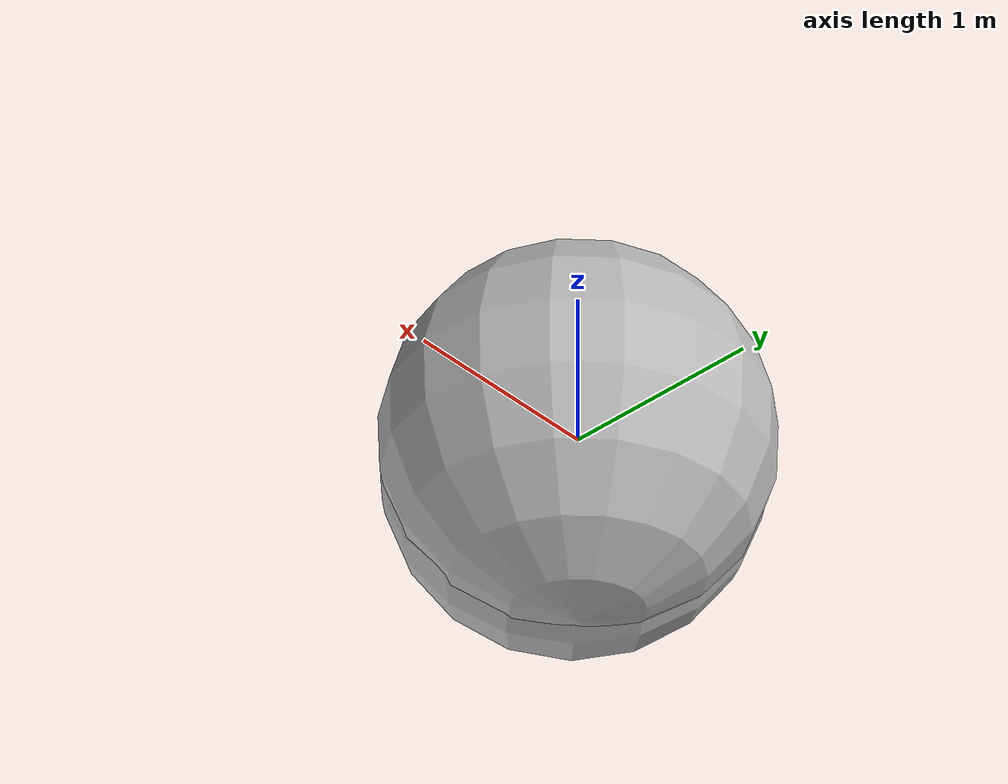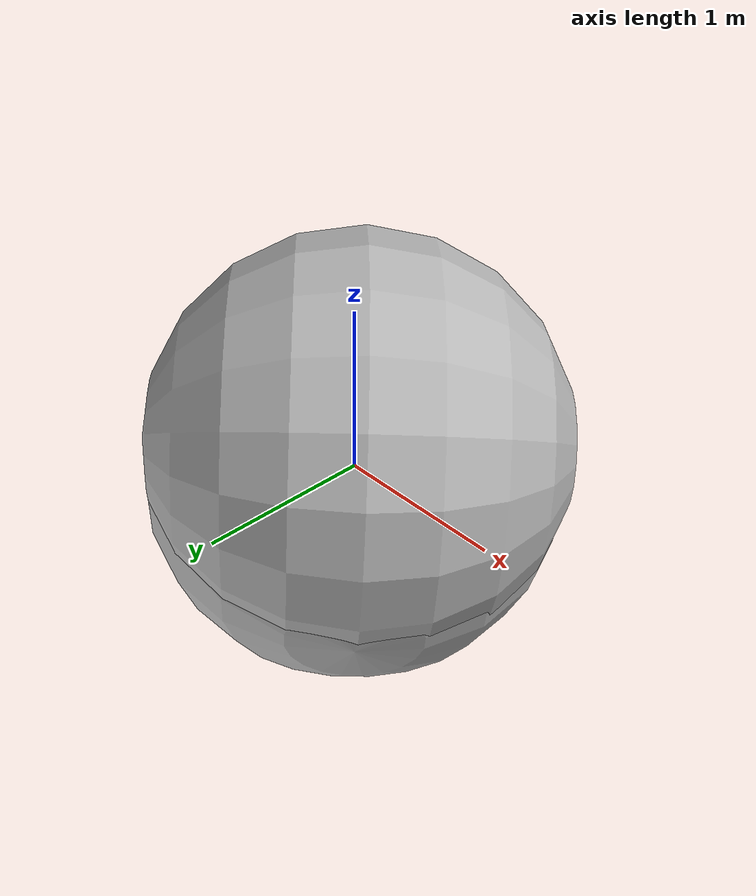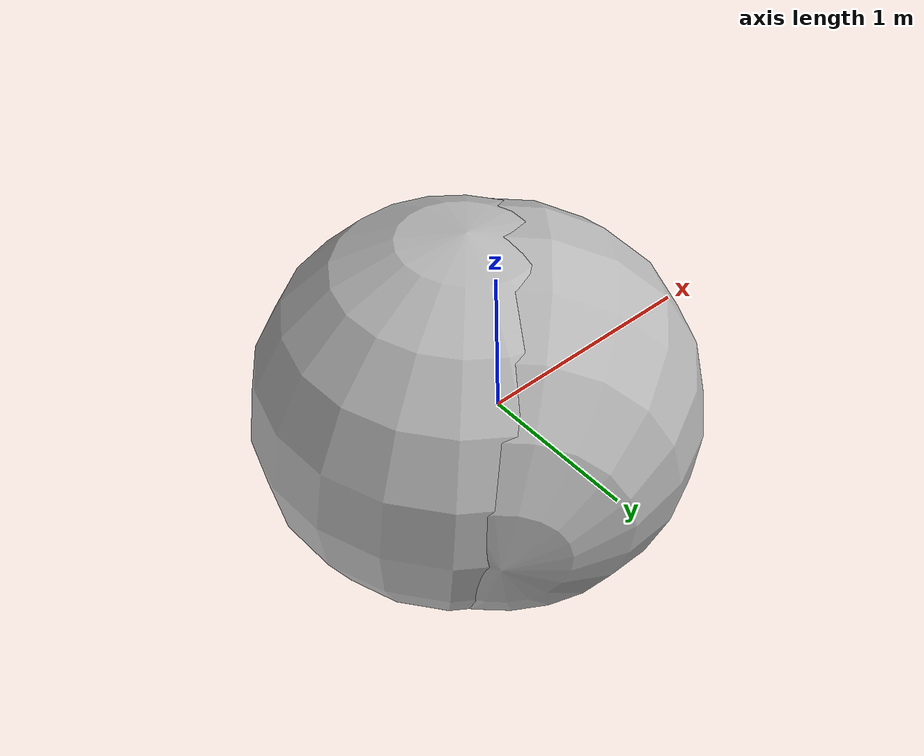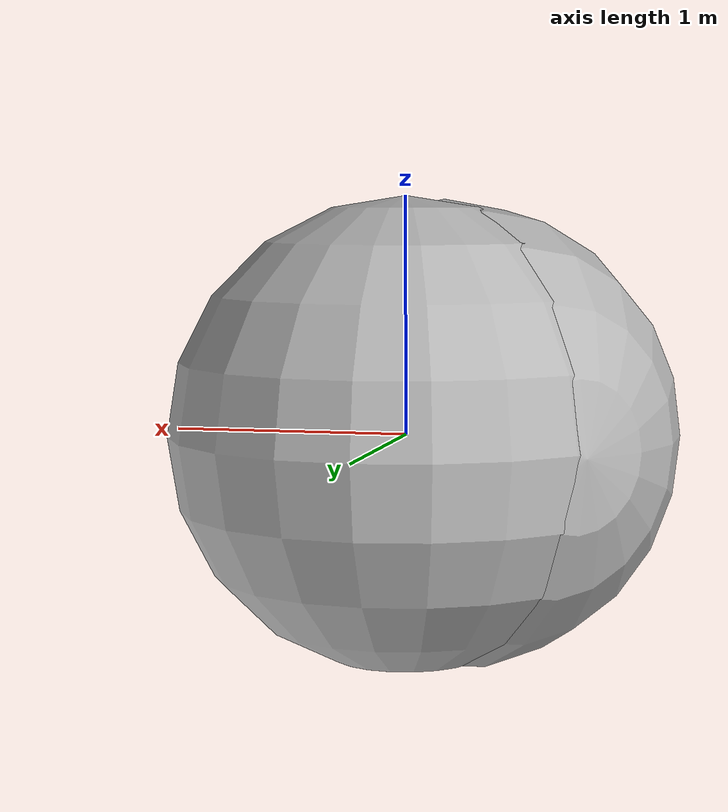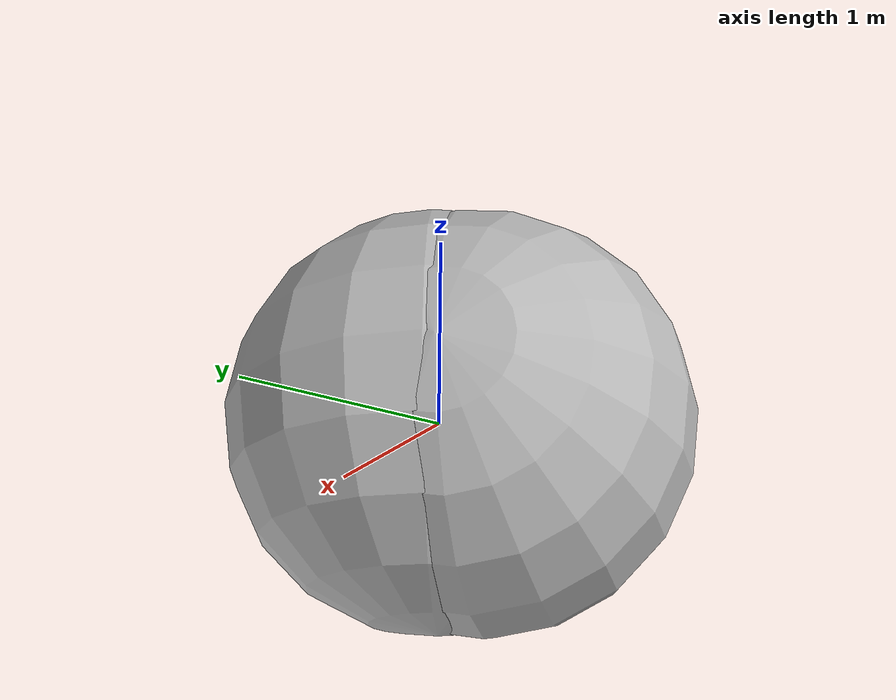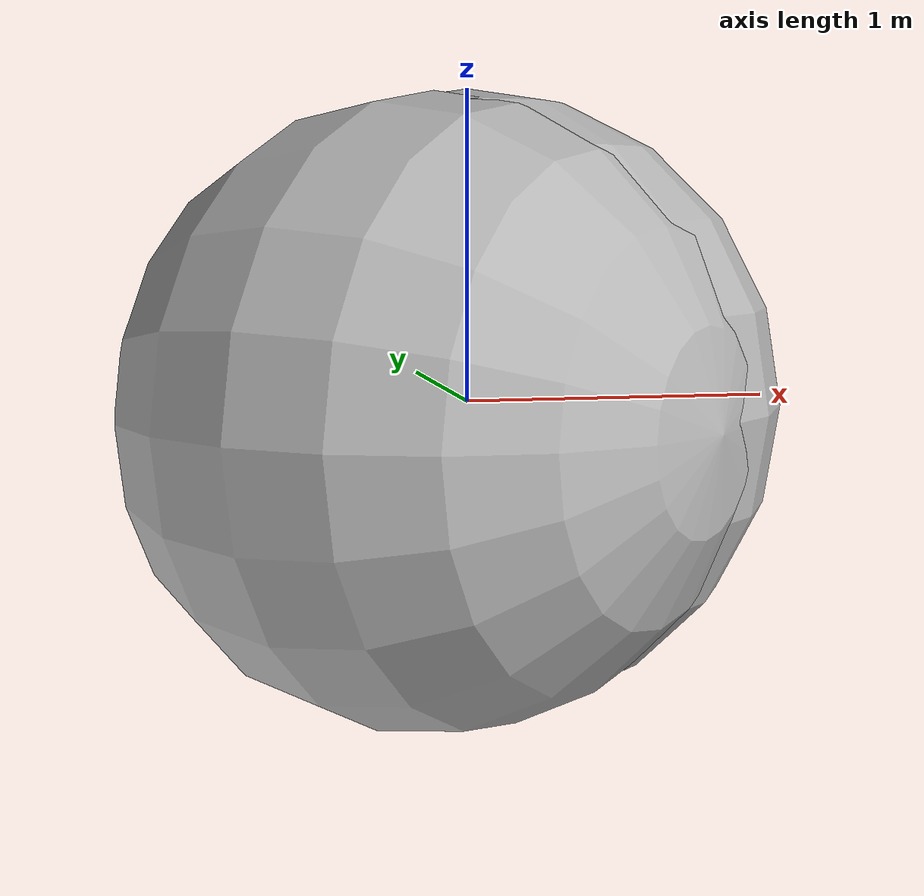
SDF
<?xml version='1.0'?>
<sdf version='1.11'>
  <model name='SuperSimpleModel'>
    <link name='body'>
      <pose>0 0 -0 0 -0 0</pose>
      <inertial>
        <mass>6.907506957916</mass>
        <pose>0 0 0 0 -0 0</pose>
        <inertia>
          <ixx>0.11811426857338</ixx>
          <ixy>0.000004287037566581</ixy>
          <ixz>0.00021516428040741</ixz>
          <iyy>0.1134262861325</iyy>
          <iyz>0.00013587201593205</iyz>
          <izz>0.18179128145474</izz>
        </inertia>
      </inertial>
      <self_collide>0</self_collide>
      <enable_wind>0</enable_wind>
      <kinematic>0</kinematic>
      <gravity>1</gravity>
      <visual name='body_visual'>
        <pose>0 0 0 0 0 0</pose>
        <geometry>
          <sphere>
            <radius>1</radius>
          </sphere>
        </geometry>
      </visual>
      <collision name='body_collision'>
        <max_contacts>10</max_contacts>
        <pose>0 0 0 0 -0 0</pose>
        <geometry>
          <sphere>
            <radius>1</radius>
          </sphere>
        </geometry>
      </collision>
    </link>
    <link name="simple_link">
      <pose>-0.135 -0.1525 -0.016 1.5708 0 0.7854</pose>
      <inertial>
        <pose>0 0 0 0 0 0</pose>
        <mass>0.002</mass>
      </inertial>
      <collision name='simple_link_collision'>
        <max_contacts>10</max_contacts>
        <pose>0 0 0 0 0 0</pose>
        <geometry>
          <sphere>
            <radius>1</radius>
          </sphere>
        </geometry>
      </collision>
      <visual name='simple_link_visual'>
        <pose>0 0 0 0 -0 0</pose>
        <geometry>
          <sphere>
            <radius>1</radius>
          </sphere>
        </geometry>
        <transparency>0</transparency>
        <cast_shadows>0</cast_shadows>
      </visual>
    </link>
    <static>false</static>
    <allow_auto_disable>true</allow_auto_disable>
    <self_collide>false</self_collide>
    <joint name='simple_joint' type='fixed'>
      <parent>body</parent>
      <child>simple_link</child>
      <pose relative_to="body">0 0 0 0 0 0</pose>
    </joint>
  </model>
</sdf>
